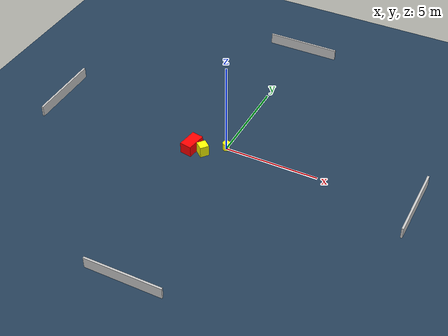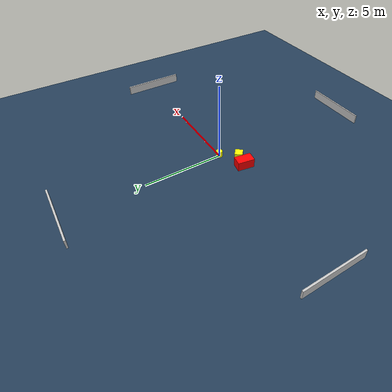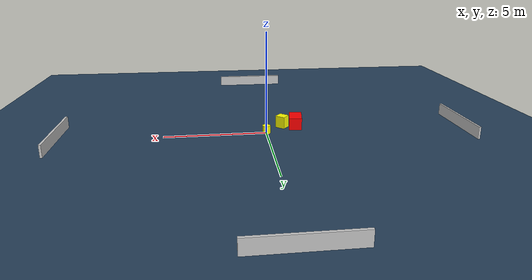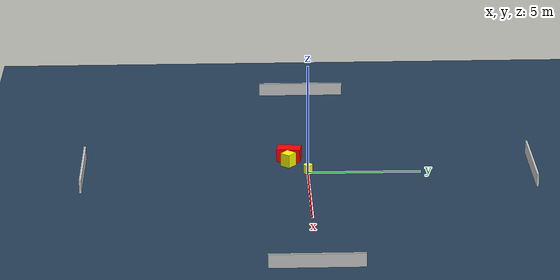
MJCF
<?xml version="1.0" ?>
<mujoco model="generated_environment">
  <option timestep="0.01" integrator="RK4" cone="elliptic"/>
  <default>
    <geom density="1"/>
  </default>
  <asset>
    <texture builtin="gradient" height="3072" name="skybox" rgb1="0.3 0.5 0.7" rgb2="0 0 0" type="skybox" width="512"/>
    <texture builtin="checker" height="300" name="groundplane" rgb1="0.2 0.3 0.4" rgb2="0.1 0.2 0.3" type="2d" width="300"/>
    <material name="groundplane" reflectance="0.2" texrepeat="5 5" texture="groundplane"/>
  </asset>
  <worldbody>
    <light dir="0 0 -1" directional="true" pos="0 0 1.5"/>
    <geom condim="3" friction="0.5 0.005 0.001" material="groundplane" name="floor" pos="0 0 0" size="0 0 0.05" type="plane"/>
    <body name="walls">
      <geom name="wall_1" condim="4" pos="-10.0 0.0 0.3" rgba="0.800000011920929 0.800000011920929 0.800000011920929 1.0" size="0.05 2.0 0.3" type="box"/>
      <geom name="wall_2" condim="4" pos="10.0 0.0 0.3" rgba="0.800000011920929 0.800000011920929 0.800000011920929 1.0" size="0.05 2.0 0.3" type="box"/>
      <geom name="wall_3" condim="4" pos="0.0 -10.0 0.3" rgba="0.800000011920929 0.800000011920929 0.800000011920929 1.0" size="2.0 0.05 0.3" type="box"/>
      <geom name="wall_4" condim="4" pos="0.0 10.0 0.3" rgba="0.800000011920929 0.800000011920929 0.800000011920929 1.0" size="2.0 0.05 0.3" type="box"/>
    </body>
    <body name="robot">
      <joint name="joint_x" type="slide" pos="0 0 0" axis="1 0 0"/>
      <joint name="joint_y" type="slide" pos="0 0 0" axis="0 1 0"/>
      <geom name="robot" type="cylinder" pos="0.0 0.0 0.2" size="0.2 0.2 0.0" mass="5.0" friction="1.0 0.005 0.0001" condim="4" rgba="1.0 1.0 0.0 1.0"/>
    </body>
    <body name="obstacle_1_movable">
      <geom name="obstacle_1_movable" condim="4" pos="-0.9131710661959594 -0.8565291010460311 0.3" euler="0 0 229.9611013384718" friction="0.0 0.005 0.001" rgba="1.0 1.0 0.0 1.0" size="0.23942711406992834 0.25229455246734356 0.3" type="box" mass="0.1"/>
      <joint type="free"/>
    </body>
    <body name="obstacle_2_static">
      <geom name="obstacle_2_static" condim="4" pos="-1.5865708605819664 -0.803724176876588 0.3" euler="0 0 81.21958606384776" friction="0.0 0.005 0.001" rgba="1.0 0.0 0.0 1.0" size="0.5331972358651538 0.31669405480841645 0.3" type="box"/>
    </body>
  </worldbody>
  <actuator>
    <motor name="actuator_x" joint="joint_x" gear="1" ctrlrange="-1 1"/>
    <motor name="actuator_y" joint="joint_y" gear="1" ctrlrange="-1 1"/>
  </actuator>
</mujoco>
